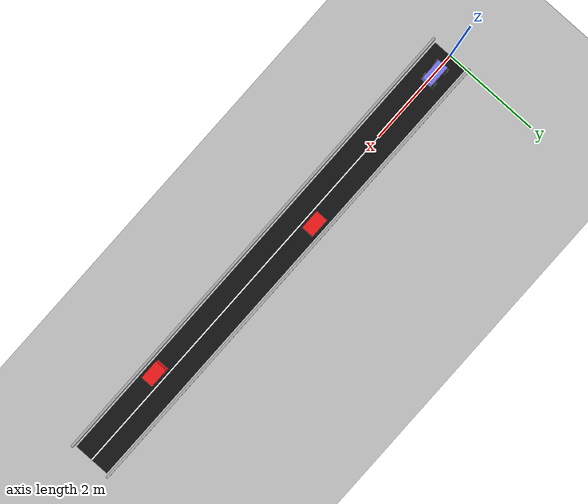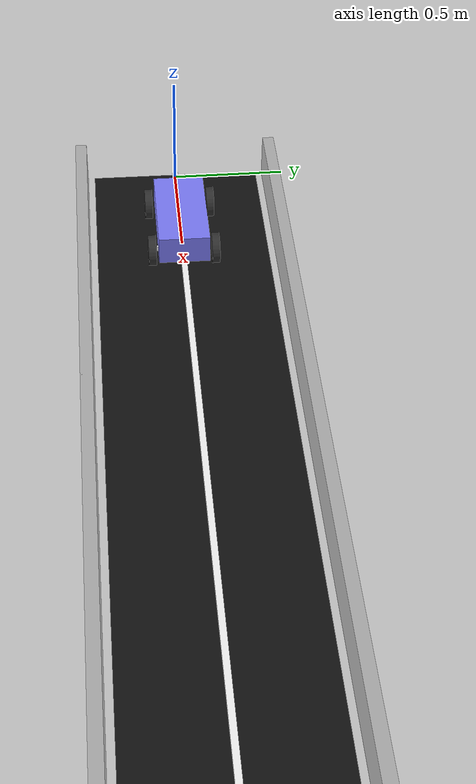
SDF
<?xml version="1.0" ?>
<sdf version="1.10">
  <world name="racing_track_team_19">
    <physics name="1ms" type="ignored">
      <max_step_size>0.001</max_step_size>
      <real_time_factor>1</real_time_factor>
      <real_time_update_rate>1000</real_time_update_rate>
    </physics>

    <plugin filename="gz-sim-physics-system" name="gz::sim::systems::Physics"/>
    <plugin filename="gz-sim-user-commands-system" name="gz::sim::systems::UserCommands"/>
    <plugin filename="gz-sim-scene-broadcaster-system" name="gz::sim::systems::SceneBroadcaster"/>

    <gravity>0 0 -9.8</gravity>

    <scene>
      <ambient>0.4 0.4 0.4 1</ambient>
      <background>0.7 0.7 0.7 1</background>
      <shadows>true</shadows>
    </scene>

    <light name="sun" type="directional">
      <pose>0 0 10 0 0 0</pose>
      <cast_shadows>true</cast_shadows>
      <direction>-0.5 0.1 -0.9</direction>
      <diffuse>1 1 1 1</diffuse>
      <specular>0.5 0.5 0.5 1</specular>
    </light>

    <model name="ground_plane">
      <static>true</static>
      <link name="link">
        <collision name="collision">
          <geometry><plane><normal>0 0 1</normal><size>20 6</size></plane></geometry>
          <surface><friction><ode><mu>50</mu><mu2>50</mu2></ode></friction></surface>
        </collision>
        <visual name="visual">
          <geometry><plane><normal>0 0 1</normal><size>20 6</size></plane></geometry>
          <material><ambient>0.8 0.8 0.8 1</ambient><diffuse>0.8 0.8 0.8 1</diffuse></material>
        </visual>
      </link>
    </model>

    <!-- Original MS4 Track 02 dimensions: length 10 m, width 0.75 m -->
    <model name="track_surface">
      <static>true</static>
      <pose>5 0 0.006 0 0 0</pose>
      <link name="link">
        <collision name="collision"><geometry><box><size>10 0.75 0.01</size></box></geometry></collision>
        <visual name="visual"><geometry><box><size>10 0.75 0.01</size></box></geometry><material><ambient>0.08 0.08 0.08 1</ambient><diffuse>0.08 0.08 0.08 1</diffuse></material></visual>
      </link>
    </model>

    <model name="center_lane_line">
      <static>true</static>
      <pose>5 0 0.02 0 0 0</pose>
      <link name="link"><visual name="visual"><geometry><box><size>10 0.025 0.01</size></box></geometry><material><ambient>1 1 1 1</ambient><diffuse>1 1 1 1</diffuse></material></visual></link>
    </model>

    <model name="left_wall">
      <static>true</static>
      <pose>5 0.43 0.10 0 0 0</pose>
      <link name="link"><collision name="collision"><geometry><box><size>10 0.05 0.20</size></box></geometry></collision><visual name="visual"><geometry><box><size>10 0.05 0.20</size></box></geometry><material><ambient>0.7 0.7 0.7 1</ambient><diffuse>0.7 0.7 0.7 1</diffuse></material></visual></link>
    </model>

    <model name="right_wall">
      <static>true</static>
      <pose>5 -0.43 0.10 0 0 0</pose>
      <link name="link"><collision name="collision"><geometry><box><size>10 0.05 0.20</size></box></geometry></collision><visual name="visual"><geometry><box><size>10 0.05 0.20</size></box></geometry><material><ambient>0.7 0.7 0.7 1</ambient><diffuse>0.7 0.7 0.7 1</diffuse></material></visual></link>
    </model>

    <!-- Obstacles: lane 1 blocked at x=4, lane 2 blocked at x=8 -->
    <model name="obstacle_lane_1_x4">
      <static>true</static>
      <pose>4.0 0.1875 0.10 0 0 0</pose>
      <link name="link"><collision name="collision"><geometry><box><size>0.40 0.25 0.20</size></box></geometry></collision><visual name="visual"><geometry><box><size>0.40 0.25 0.20</size></box></geometry><material><ambient>1 0.1 0.1 1</ambient><diffuse>1 0.1 0.1 1</diffuse></material></visual></link>
    </model>

    <model name="obstacle_lane_2_x8">
      <static>true</static>
      <pose>8.0 -0.1875 0.10 0 0 0</pose>
      <link name="link"><collision name="collision"><geometry><box><size>0.40 0.25 0.20</size></box></geometry></collision><visual name="visual"><geometry><box><size>0.40 0.25 0.20</size></box></geometry><material><ambient>1 0.1 0.1 1</ambient><diffuse>1 0.1 0.1 1</diffuse></material></visual></link>
    </model>

<model name="vehicle_blue">
      <pose>0.50 0 0.0715 0 0 0</pose>
      <link name="chassis">
        <pose>-0.03331394 0 0.0385 0 0 0</pose>
        <inertial>
          <mass>0.0121807796</mass>
          <inertia>
            <ixx>6.50202828e-05</ixx>
            <ixy>0</ixy>
            <ixz>0</ixz>
            <iyy>0.000214658565</iyy>
            <iyz>0</iyz>
            <izz>0.000247896914</izz>
          </inertia>
          <pose>0 0 0 0 0 0</pose>
        </inertial>
        <visual name="visual">
          <geometry>
            <box>
              <size>0.4425124 0.22 0.12511972</size>
            </box>
          </geometry>
          <material>
            <ambient>0.5 0.5 1 1</ambient>
            <diffuse>0.5 0.5 1 1</diffuse>
            <specular>0 0 1 1</specular>
          </material>
        </visual>
        <collision name="collision">
          <geometry>
            <box>
              <size>0.4425124 0.22 0.12511972</size>
            </box>
          </geometry>
          <surface>
            <friction>
              <ode />
            </friction>
            <bounce />
            <contact />
          </surface>
        </collision>
        <enable_wind>false</enable_wind>
      </link>
      <link name="front_left_wheel">
        <pose>0.12194226 0.13750638 -0.0055 -1.5707 0 0</pose>
        <inertial>
          <mass>0.021296</mass>
          <inertia>
            <ixx>7.51569615e-05</ixx>
            <ixy>0</ixy>
            <ixz>0</ixz>
            <iyy>7.51569615e-05</iyy>
            <iyz>0</iyz>
            <izz>6.44204e-05</izz>
          </inertia>
          <pose>0 0 0 0 0 0</pose>
        </inertial>
        <visual name="visual">
          <geometry>
            <cylinder>
              <length>0.033</length>
              <radius>0.066</radius>
            </cylinder>
          </geometry>
          <material>
            <ambient>0.200000003 0.200000003 0.200000003 1</ambient>
            <diffuse>0.200000003 0.200000003 0.200000003 1</diffuse>
            <specular>0.200000003 0.200000003 0.200000003 1</specular>
          </material>
        </visual>
        <collision name="collision">
          <geometry>
            <cylinder>
              <length>0.033</length>
              <radius>0.066</radius>
            </cylinder>
          </geometry>
          <surface>
            <friction>
              <ode>
                <mu>0.5</mu>
                <mu2>1</mu2>
                <fdir1>0 0 1</fdir1>
              </ode>
              <bullet>
                <friction>0.5</friction>
                <friction2>1</friction2>
                <rolling_friction>0.10000000000000001</rolling_friction>
              </bullet>
            </friction>
            <bounce />
            <contact />
          </surface>
        </collision>
        <enable_wind>false</enable_wind>
      </link>
      <link name="rear_left_wheel">
        <pose>-0.21057036 0.13750638 -0.0055 -1.5707 0 0</pose>
        <inertial>
          <mass>0.021296</mass>
          <inertia>
            <ixx>7.51569615e-05</ixx>
            <ixy>0</ixy>
            <ixz>0</ixz>
            <iyy>7.51569615e-05</iyy>
            <iyz>0</iyz>
            <izz>6.44204e-05</izz>
          </inertia>
          <pose>0 0 0 0 0 0</pose>
        </inertial>
        <visual name="visual">
          <geometry>
            <cylinder>
              <length>0.033</length>
              <radius>0.066</radius>
            </cylinder>
          </geometry>
          <material>
            <ambient>0.200000003 0.200000003 0.200000003 1</ambient>
            <diffuse>0.200000003 0.200000003 0.200000003 1</diffuse>
            <specular>0.200000003 0.200000003 0.200000003 1</specular>
          </material>
        </visual>
        <collision name="collision">
          <geometry>
            <cylinder>
              <length>0.033</length>
              <radius>0.066</radius>
            </cylinder>
          </geometry>
          <surface>
            <friction>
              <ode>
                <mu>0.5</mu>
                <mu2>1</mu2>
                <fdir1>0 0 1</fdir1>
              </ode>
              <bullet>
                <friction>0.5</friction>
                <friction2>1</friction2>
                <rolling_friction>0.5</rolling_friction>
              </bullet>
            </friction>
            <bounce />
            <contact />
          </surface>
        </collision>
        <enable_wind>false</enable_wind>
      </link>
      <link name="front_right_wheel">
        <pose>0.12194204 -0.13750638 -0.0055 -1.5707 0 0</pose>
        <inertial>
          <mass>0.021296</mass>
          <inertia>
            <ixx>7.51569615e-05</ixx>
            <ixy>0</ixy>
            <ixz>0</ixz>
            <iyy>7.51569615e-05</iyy>
            <iyz>0</iyz>
            <izz>6.44204e-05</izz>
          </inertia>
          <pose>0 0 0 0 0 0</pose>
        </inertial>
        <visual name="visual">
          <geometry>
            <cylinder>
              <length>0.033</length>
              <radius>0.066</radius>
            </cylinder>
          </geometry>
          <material>
            <ambient>0.200000003 0.200000003 0.200000003 1</ambient>
            <diffuse>0.200000003 0.200000003 0.200000003 1</diffuse>
            <specular>0.200000003 0.200000003 0.200000003 1</specular>
          </material>
        </visual>
        <collision name="collision">
          <geometry>
            <cylinder>
              <length>0.033</length>
              <radius>0.066</radius>
            </cylinder>
          </geometry>
          <surface>
            <friction>
              <ode>
                <mu>0.5</mu>
                <mu2>1</mu2>
                <fdir1>0 0 1</fdir1>
              </ode>
              <bullet>
                <friction>0.5</friction>
                <friction2>1</friction2>
                <rolling_friction>0.10000000000000001</rolling_friction>
              </bullet>
            </friction>
            <bounce />
            <contact />
          </surface>
        </collision>
        <enable_wind>false</enable_wind>
      </link>
      <link name="rear_right_wheel">
        <pose>-0.21057036 -0.13750638 -0.0055 -1.5707 0 0</pose>
        <inertial>
          <mass>0.021296</mass>
          <inertia>
            <ixx>7.51569615e-05</ixx>
            <ixy>0</ixy>
            <ixz>0</ixz>
            <iyy>7.51569615e-05</iyy>
            <iyz>0</iyz>
            <izz>6.44204e-05</izz>
          </inertia>
          <pose>0 0 0 0 0 0</pose>
        </inertial>
        <visual name="visual">
          <geometry>
            <cylinder>
              <length>0.033</length>
              <radius>0.066</radius>
            </cylinder>
          </geometry>
          <material>
            <ambient>0.200000003 0.200000003 0.200000003 1</ambient>
            <diffuse>0.200000003 0.200000003 0.200000003 1</diffuse>
            <specular>0.200000003 0.200000003 0.200000003 1</specular>
          </material>
        </visual>
        <collision name="collision">
          <geometry>
            <cylinder>
              <length>0.033</length>
              <radius>0.066</radius>
            </cylinder>
          </geometry>
          <surface>
            <friction>
              <ode>
                <mu>0.5</mu>
                <mu2>1</mu2>
                <fdir1>0 0 1</fdir1>
              </ode>
              <bullet>
                <friction>0.5</friction>
                <friction2>1</friction2>
                <rolling_friction>0.5</rolling_friction>
              </bullet>
            </friction>
            <bounce />
            <contact />
          </surface>
        </collision>
        <enable_wind>false</enable_wind>
      </link>
      <link name="front_left_wheel_steering_link">
        <pose>0.12194226 0.11 0.0044 0 0 0</pose>
        <inertial>
          <mass>0.005324</mass>
          <inertia>
            <ixx>7.88505696e-06</ixx>
            <iyy>1.288408e-05</iyy>
            <izz>7.88505696e-06</izz>
            <ixy>0</ixy>
            <ixz>0</ixz>
            <iyz>0</iyz>
          </inertia>
          <pose>0 0 0 0 0 0</pose>
        </inertial>
        <visual name="steering_link_visual">
          <pose>0 0 0 0 0 0</pose>
          <geometry>
            <cylinder>
              <length>0.022</length>
              <radius>0.0066</radius>
            </cylinder>
          </geometry>
          <material>
            <ambient>1 1 1 1</ambient>
            <diffuse>1 1 1 1</diffuse>
          </material>
        </visual>
        <enable_wind>false</enable_wind>
      </link>
      <link name="front_right_wheel_steering_link">
        <pose>0.12194226 -0.11 0.0044 0 0 0</pose>
        <inertial>
          <mass>0.005324</mass>
          <inertia>
            <ixx>7.88505696e-06</ixx>
            <iyy>1.288408e-05</iyy>
            <izz>7.88505696e-06</izz>
            <ixy>0</ixy>
            <ixz>0</ixz>
            <iyz>0</iyz>
          </inertia>
          <pose>0 0 0 0 0 0</pose>
        </inertial>
        <visual name="steering_link_visual">
          <pose>0 0 0 0 0 0</pose>
          <geometry>
            <cylinder>
              <length>0.022</length>
              <radius>0.0066</radius>
            </cylinder>
          </geometry>
          <material>
            <ambient>1 1 1 1</ambient>
            <diffuse>1 1 1 1</diffuse>
          </material>
        </visual>
        <enable_wind>false</enable_wind>
      </link>
      <joint name="front_left_wheel_steering_joint" type="revolute">
        <child>front_left_wheel_steering_link</child>
        <parent>chassis</parent>
        <axis>
          <xyz>0 0 1</xyz>
          <limit>
            <lower>-0.59999999999999998</lower>
            <upper>0.59999999999999998</upper>
            <effort>25</effort>
            <velocity>1</velocity>
            <stiffness>100000000</stiffness>
            <dissipation>1</dissipation>
          </limit>
          <dynamics>
            <spring_reference>0</spring_reference>
            <spring_stiffness>0</spring_stiffness>
            <damping>0</damping>
            <friction>0</friction>
          </dynamics>
        </axis>
        <pose>0 0 0 0 0 0</pose>
      </joint>
      <joint name="front_right_wheel_steering_joint" type="revolute">
        <parent>chassis</parent>
        <child>front_right_wheel_steering_link</child>
        <axis>
          <xyz>0 0 1</xyz>
          <limit>
            <lower>-0.59999999999999998</lower>
            <upper>0.59999999999999998</upper>
            <effort>25</effort>
            <velocity>1</velocity>
            <stiffness>100000000</stiffness>
            <dissipation>1</dissipation>
          </limit>
          <dynamics>
            <spring_reference>0</spring_reference>
            <spring_stiffness>0</spring_stiffness>
            <damping>0</damping>
            <friction>0</friction>
          </dynamics>
        </axis>
        <pose>0 0 0 0 0 0</pose>
      </joint>
      <joint name="front_left_wheel_joint" type="revolute">
        <parent>front_left_wheel_steering_link</parent>
        <child>front_left_wheel</child>
        <axis>
          <xyz>0 0 1</xyz>
          <limit>
            <lower>-1.7976900000000001e+308</lower>
            <upper>1.7976900000000001e+308</upper>
            <effort>inf</effort>
            <velocity>inf</velocity>
            <stiffness>100000000</stiffness>
            <dissipation>1</dissipation>
          </limit>
          <dynamics>
            <spring_reference>0</spring_reference>
            <spring_stiffness>0</spring_stiffness>
            <damping>0</damping>
            <friction>0</friction>
          </dynamics>
        </axis>
        <pose>0 0 2.44249065e-17 0 0 0</pose>
      </joint>
      <joint name="front_right_wheel_joint" type="revolute">
        <parent>front_right_wheel_steering_link</parent>
        <child>front_right_wheel</child>
        <axis>
          <xyz>0 0 1</xyz>
          <limit>
            <lower>-1.7976900000000001e+308</lower>
            <upper>1.7976900000000001e+308</upper>
            <effort>inf</effort>
            <velocity>inf</velocity>
            <stiffness>100000000</stiffness>
            <dissipation>1</dissipation>
          </limit>
          <dynamics>
            <spring_reference>0</spring_reference>
            <spring_stiffness>0</spring_stiffness>
            <damping>0</damping>
            <friction>0</friction>
          </dynamics>
        </axis>
        <pose>-2.44249065e-17 0 0 0 0 0</pose>
      </joint>
      <joint name="rear_left_wheel_joint" type="revolute">
        <parent>chassis</parent>
        <child>rear_left_wheel</child>
        <axis>
          <xyz>0 0 1</xyz>
          <limit>
            <lower>-1.7976900000000001e+308</lower>
            <upper>1.7976900000000001e+308</upper>
            <effort>inf</effort>
            <velocity>inf</velocity>
            <stiffness>100000000</stiffness>
            <dissipation>1</dissipation>
          </limit>
          <dynamics>
            <spring_reference>0</spring_reference>
            <spring_stiffness>0</spring_stiffness>
            <damping>0</damping>
            <friction>0</friction>
          </dynamics>
        </axis>
        <pose>0 0 2.44249065e-17 0 0 0</pose>
      </joint>
      <joint name="rear_right_wheel_joint" type="revolute">
        <parent>chassis</parent>
        <child>rear_right_wheel</child>
        <axis>
          <xyz>0 0 1</xyz>
          <limit>
            <lower>-1.7976900000000001e+308</lower>
            <upper>1.7976900000000001e+308</upper>
            <effort>inf</effort>
            <velocity>inf</velocity>
            <stiffness>100000000</stiffness>
            <dissipation>1</dissipation>
          </limit>
          <dynamics>
            <spring_reference>0</spring_reference>
            <spring_stiffness>0</spring_stiffness>
            <damping>0</damping>
            <friction>0</friction>
          </dynamics>
        </axis>
        <pose>0 0 0 0 0 0</pose>
      </joint>
      <plugin name="gz::sim::systems::AckermannSteering" filename="gz-sim-ackermann-steering-system">
        <left_joint>front_left_wheel_joint</left_joint>
        <left_joint>rear_left_wheel_joint</left_joint>
        <right_joint>front_right_wheel_joint</right_joint>
        <right_joint>rear_right_wheel_joint</right_joint>
        <left_steering_joint>front_left_wheel_steering_joint</left_steering_joint>
        <right_steering_joint>front_right_wheel_steering_joint</right_steering_joint>
        <kingpin_width>0.22</kingpin_width>
        <steering_limit>0.5</steering_limit>
        <wheel_base>0.22</wheel_base>
        <wheel_separation>0.275</wheel_separation>
        <wheel_radius>0.066</wheel_radius>
        <min_velocity>-0.5</min_velocity>
        <max_velocity>0.8</max_velocity>
        <min_acceleration>-1.5</min_acceleration>
        <max_acceleration>1.5</max_acceleration>
      <odom_publish_frequency>30</odom_publish_frequency><topic>/model/vehicle_blue/cmd_vel</topic><odom_topic>/model/vehicle_blue/odometry</odom_topic><tf_topic>/model/vehicle_blue/tf</tf_topic><frame_id>odom</frame_id><child_frame_id>vehicle_blue/chassis</child_frame_id></plugin>
      <static>false</static>
      <self_collide>false</self_collide>
    </model>

  </world>
</sdf>
